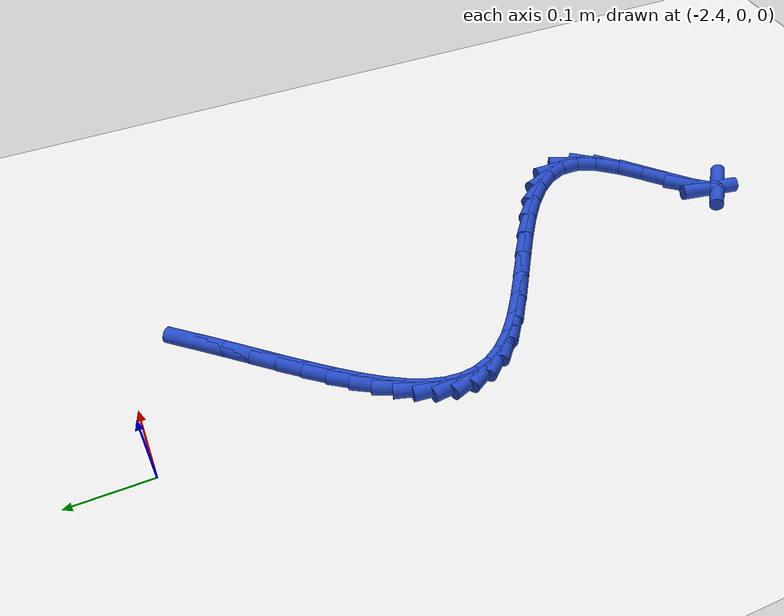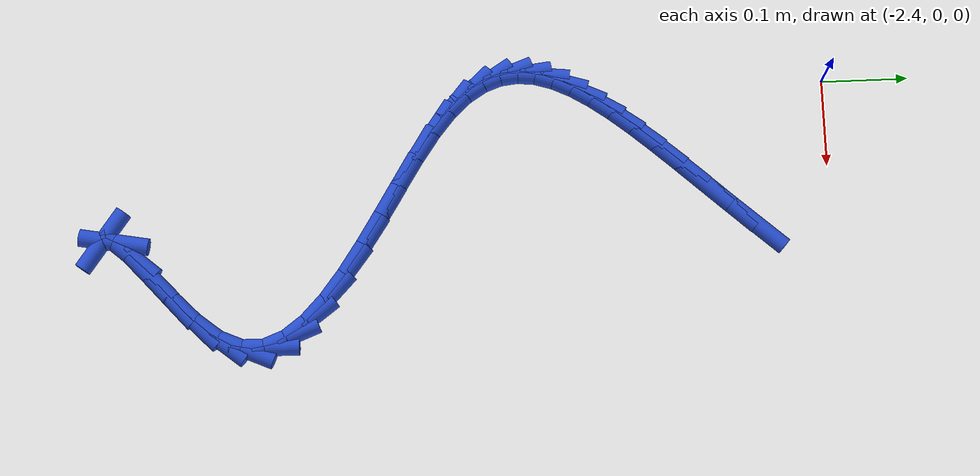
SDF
<sdf version="1.6">
 <world name="default">
  <model name="ground_plane">
   <static>1</static>
   <link name="link">
    <collision name="collision">
     <geometry><plane><normal>0 0 1</normal><size>100 100</size></plane></geometry>
     <surface><friction><ode><mu>100</mu><mu2>50</mu2></ode></friction></surface>
    </collision>
    <visual name="visual">
     <cast_shadows>0</cast_shadows>
     <geometry><plane><normal>0 0 1</normal><size>100 100</size></plane></geometry>
     <material>
      <script><uri>file://media/materials/scripts/gazebo.material</uri><name>Gazebo/WhiteGlow</name></script>
     </material>
    </visual>
   </link>
  </model>
  <model name="line">
   <link name="link_133">
    <pose>-2.2313706894288554 -0.08629669471742565 0.01 0 1.57 0.8448653574551647</pose>
    <collision name="collision">
     <geometry><cylinder><radius>0.01</radius><length>0.08</length></cylinder></geometry>
    </collision>
    <visual name="visual">
     <material>
      <script><name>Gazebo/Blue</name><uri>file://media/materials/scripts/gazebo.material</uri></script>
     </material>
     <geometry><cylinder><radius>0.01</radius><length>0.08</length></cylinder></geometry>
    </visual>
   </link>
   <link name="link_134">
    <pose>-2.257552228513083 -0.11579315679593868 0.01 0 1.57 0.8343181897351191</pose>
    <collision name="collision">
     <geometry><cylinder><radius>0.01</radius><length>0.08</length></cylinder></geometry>
    </collision>
    <visual name="visual">
     <material>
      <script><name>Gazebo/Blue</name><uri>file://media/materials/scripts/gazebo.material</uri></script>
     </material>
     <geometry><cylinder><radius>0.01</radius><length>0.08</length></cylinder></geometry>
    </visual>
   </link>
   <link name="link_135">
    <pose>-2.2830670945118268 -0.14393500668918308 0.01 0 1.57 0.8326649272173974</pose>
    <collision name="collision">
     <geometry><cylinder><radius>0.01</radius><length>0.08</length></cylinder></geometry>
    </collision>
    <visual name="visual">
     <material>
      <script><name>Gazebo/Blue</name><uri>file://media/materials/scripts/gazebo.material</uri></script>
     </material>
     <geometry><cylinder><radius>0.01</radius><length>0.08</length></cylinder></geometry>
    </visual>
   </link>
   <link name="link_136">
    <pose>-2.3075285313882845 -0.17082549196139513 0.01 0 1.57 0.8411425349911995</pose>
    <collision name="collision">
     <geometry><cylinder><radius>0.01</radius><length>0.08</length></cylinder></geometry>
    </collision>
    <visual name="visual">
     <material>
      <script><name>Gazebo/Blue</name><uri>file://media/materials/scripts/gazebo.material</uri></script>
     </material>
     <geometry><cylinder><radius>0.01</radius><length>0.08</length></cylinder></geometry>
    </visual>
   </link>
   <link name="link_137">
    <pose>-2.3305497831056536 -0.19656786017680972 0.01 0 1.57 0.8615862111270647</pose>
    <collision name="collision">
     <geometry><cylinder><radius>0.01</radius><length>0.08</length></cylinder></geometry>
    </collision>
    <visual name="visual">
     <material>
      <script><name>Gazebo/Blue</name><uri>file://media/materials/scripts/gazebo.material</uri></script>
     </material>
     <geometry><cylinder><radius>0.01</radius><length>0.08</length></cylinder></geometry>
    </visual>
   </link>
   <link name="link_138">
    <pose>-2.351744093627134 -0.22126535889966456 0.01 0 1.57 0.8966739751331181</pose>
    <collision name="collision">
     <geometry><cylinder><radius>0.01</radius><length>0.08</length></cylinder></geometry>
    </collision>
    <visual name="visual">
     <material>
      <script><name>Gazebo/Blue</name><uri>file://media/materials/scripts/gazebo.material</uri></script>
     </material>
     <geometry><cylinder><radius>0.01</radius><length>0.08</length></cylinder></geometry>
    </visual>
   </link>
   <link name="link_139">
    <pose>-2.370724706915924 -0.24502123569419446 0.01 0 1.57 0.9502430814318952</pose>
    <collision name="collision">
     <geometry><cylinder><radius>0.01</radius><length>0.08</length></cylinder></geometry>
    </collision>
    <visual name="visual">
     <material>
      <script><name>Gazebo/Blue</name><uri>file://media/materials/scripts/gazebo.material</uri></script>
     </material>
     <geometry><cylinder><radius>0.01</radius><length>0.08</length></cylinder></geometry>
    </visual>
   </link>
   <link name="link_140">
    <pose>-2.3871048669352213 -0.2679387381246361 0.01 0 1.57 1.0276127548378726</pose>
    <collision name="collision">
     <geometry><cylinder><radius>0.01</radius><length>0.08</length></cylinder></geometry>
    </collision>
    <visual name="visual">
     <material>
      <script><name>Gazebo/Blue</name><uri>file://media/materials/scripts/gazebo.material</uri></script>
     </material>
     <geometry><cylinder><radius>0.01</radius><length>0.08</length></cylinder></geometry>
    </visual>
   </link>
   <link name="link_141">
    <pose>-2.400497817648226 -0.29012111375522653 0.01 0 1.57 1.1356147891970254</pose>
    <collision name="collision">
     <geometry><cylinder><radius>0.01</radius><length>0.08</length></cylinder></geometry>
    </collision>
    <visual name="visual">
     <material>
      <script><name>Gazebo/Blue</name><uri>file://media/materials/scripts/gazebo.material</uri></script>
     </material>
     <geometry><cylinder><radius>0.01</radius><length>0.08</length></cylinder></geometry>
    </visual>
   </link>
   <link name="link_142">
    <pose>-2.410516803018136 -0.3116716101502004 0.01 0 1.57 1.2814485602273875</pose>
    <collision name="collision">
     <geometry><cylinder><radius>0.01</radius><length>0.08</length></cylinder></geometry>
    </collision>
    <visual name="visual">
     <material>
      <script><name>Gazebo/Blue</name><uri>file://media/materials/scripts/gazebo.material</uri></script>
     </material>
     <geometry><cylinder><radius>0.01</radius><length>0.08</length></cylinder></geometry>
    </visual>
   </link>
   <link name="link_143">
    <pose>-2.416775067008151 -0.3326934748737954 0.01 0 1.57 1.4686699901498668</pose>
    <collision name="collision">
     <geometry><cylinder><radius>0.01</radius><length>0.08</length></cylinder></geometry>
    </collision>
    <visual name="visual">
     <material>
      <script><name>Gazebo/Blue</name><uri>file://media/materials/scripts/gazebo.material</uri></script>
     </material>
     <geometry><cylinder><radius>0.01</radius><length>0.08</length></cylinder></geometry>
    </visual>
   </link>
   <link name="link_144">
    <pose>-2.4188858535814663 -0.3532899554902461 0.01 0 1.57 -1.4518281027129103</pose>
    <collision name="collision">
     <geometry><cylinder><radius>0.01</radius><length>0.08</length></cylinder></geometry>
    </collision>
    <visual name="visual">
     <material>
      <script><name>Gazebo/Blue</name><uri>file://media/materials/scripts/gazebo.material</uri></script>
     </material>
     <geometry><cylinder><radius>0.01</radius><length>0.08</length></cylinder></geometry>
    </visual>
   </link>
   <link name="link_145">
    <pose>-2.4164624067012848 -0.37356429956379017 0.01 0 1.57 -1.2197572971969575</pose>
    <collision name="collision">
     <geometry><cylinder><radius>0.01</radius><length>0.08</length></cylinder></geometry>
    </collision>
    <visual name="visual">
     <material>
      <script><name>Gazebo/Blue</name><uri>file://media/materials/scripts/gazebo.material</uri></script>
     </material>
     <geometry><cylinder><radius>0.01</radius><length>0.08</length></cylinder></geometry>
    </visual>
   </link>
   <link name="link_146">
    <pose>-2.409117970330802 -0.3936197546586625 0.01 0 1.57 -1.0053814659437237</pose>
    <collision name="collision">
     <geometry><cylinder><radius>0.01</radius><length>0.08</length></cylinder></geometry>
    </collision>
    <visual name="visual">
     <material>
      <script><name>Gazebo/Blue</name><uri>file://media/materials/scripts/gazebo.material</uri></script>
     </material>
     <geometry><cylinder><radius>0.01</radius><length>0.08</length></cylinder></geometry>
    </visual>
   </link>
   <link name="link_147">
    <pose>-2.3964657884332174 -0.41355956833910035 0.01 0 1.57 -0.8266751205242541</pose>
    <collision name="collision">
     <geometry><cylinder><radius>0.01</radius><length>0.08</length></cylinder></geometry>
    </collision>
    <visual name="visual">
     <material>
      <script><name>Gazebo/Blue</name><uri>file://media/materials/scripts/gazebo.material</uri></script>
     </material>
     <geometry><cylinder><radius>0.01</radius><length>0.08</length></cylinder></geometry>
    </visual>
   </link>
   <link name="link_148">
    <pose>-2.378119104971731 -0.43348698816933895 0.01 0 1.57 -0.6898411182218643</pose>
    <collision name="collision">
     <geometry><cylinder><radius>0.01</radius><length>0.08</length></cylinder></geometry>
    </collision>
    <visual name="visual">
     <material>
      <script><name>Gazebo/Blue</name><uri>file://media/materials/scripts/gazebo.material</uri></script>
     </material>
     <geometry><cylinder><radius>0.01</radius><length>0.08</length></cylinder></geometry>
    </visual>
   </link>
   <link name="link_149">
    <pose>-2.3538586944978954 -0.4535035015420613 0.01 0 1.57 -0.6061900566730385</pose>
    <collision name="collision">
     <geometry><cylinder><radius>0.01</radius><length>0.08</length></cylinder></geometry>
    </collision>
    <visual name="visual">
     <material>
      <script><name>Gazebo/Blue</name><uri>file://media/materials/scripts/gazebo.material</uri></script>
     </material>
     <geometry><cylinder><radius>0.01</radius><length>0.08</length></cylinder></geometry>
    </visual>
   </link>
   <link name="link_150">
    <pose>-2.3247300506309867 -0.47369730799279586 0.01 0 1.57 -0.5634601092797911</pose>
    <collision name="collision">
     <geometry><cylinder><radius>0.01</radius><length>0.08</length></cylinder></geometry>
    </collision>
    <visual name="visual">
     <material>
      <script><name>Gazebo/Blue</name><uri>file://media/materials/scripts/gazebo.material</uri></script>
     </material>
     <geometry><cylinder><radius>0.01</radius><length>0.08</length></cylinder></geometry>
    </visual>
   </link>
   <link name="link_151">
    <pose>-2.292356081583454 -0.49415054041126283 0.01 0 1.57 -0.548999037191448</pose>
    <collision name="collision">
     <geometry><cylinder><radius>0.01</radius><length>0.08</length></cylinder></geometry>
    </collision>
    <visual name="visual">
     <material>
      <script><name>Gazebo/Blue</name><uri>file://media/materials/scripts/gazebo.material</uri></script>
     </material>
     <geometry><cylinder><radius>0.01</radius><length>0.08</length></cylinder></geometry>
    </visual>
   </link>
   <link name="link_152">
    <pose>-2.258362653422423 -0.5149453006102812 0.01 0 1.57 -0.5581019778000411</pose>
    <collision name="collision">
     <geometry><cylinder><radius>0.01</radius><length>0.08</length></cylinder></geometry>
    </collision>
    <visual name="visual">
     <material>
      <script><name>Gazebo/Blue</name><uri>file://media/materials/scripts/gazebo.material</uri></script>
     </material>
     <geometry><cylinder><radius>0.01</radius><length>0.08</length></cylinder></geometry>
    </visual>
   </link>
   <link name="link_153">
    <pose>-2.2243756322150245 -0.5361636904026683 0.01 0 1.57 -0.5912967274950527</pose>
    <collision name="collision">
     <geometry><cylinder><radius>0.01</radius><length>0.08</length></cylinder></geometry>
    </collision>
    <visual name="visual">
     <material>
      <script><name>Gazebo/Blue</name><uri>file://media/materials/scripts/gazebo.material</uri></script>
     </material>
     <geometry><cylinder><radius>0.01</radius><length>0.08</length></cylinder></geometry>
    </visual>
   </link>
   <link name="link_154">
    <pose>-2.1920208840283815 -0.5578878116012427 0.01 0 1.57 -0.6541812929842659</pose>
    <collision name="collision">
     <geometry><cylinder><radius>0.01</radius><length>0.08</length></cylinder></geometry>
    </collision>
    <visual name="visual">
     <material>
      <script><name>Gazebo/Blue</name><uri>file://media/materials/scripts/gazebo.material</uri></script>
     </material>
     <geometry><cylinder><radius>0.01</radius><length>0.08</length></cylinder></geometry>
    </visual>
   </link>
   <link name="link_155">
    <pose>-2.162924274929625 -0.5801997660188216 0.01 0 1.57 -0.7593265702329363</pose>
    <collision name="collision">
     <geometry><cylinder><radius>0.01</radius><length>0.08</length></cylinder></geometry>
    </collision>
    <visual name="visual">
     <material>
      <script><name>Gazebo/Blue</name><uri>file://media/materials/scripts/gazebo.material</uri></script>
     </material>
     <geometry><cylinder><radius>0.01</radius><length>0.08</length></cylinder></geometry>
    </visual>
   </link>
   <link name="link_156">
    <pose>-2.138711670985879 -0.6031816554682242 0.01 0 1.57 -0.9299352935387623</pose>
    <collision name="collision">
     <geometry><cylinder><radius>0.01</radius><length>0.08</length></cylinder></geometry>
    </collision>
    <visual name="visual">
     <material>
      <script><name>Gazebo/Blue</name><uri>file://media/materials/scripts/gazebo.material</uri></script>
     </material>
     <geometry><cylinder><radius>0.01</radius><length>0.08</length></cylinder></geometry>
    </visual>
   </link>
   <link name="link_157">
    <pose>-2.1210089382642727 -0.6269155817622678 0.01 0 1.57 -1.1994543982569883</pose>
    <collision name="collision">
     <geometry><cylinder><radius>0.01</radius><length>0.08</length></cylinder></geometry>
    </collision>
    <visual name="visual">
     <material>
      <script><name>Gazebo/Blue</name><uri>file://media/materials/scripts/gazebo.material</uri></script>
     </material>
     <geometry><cylinder><radius>0.01</radius><length>0.08</length></cylinder></geometry>
    </visual>
   </link>
   <link name="link_158">
    <pose>-2.1114419428319326 -0.6514836467137713 0.01 0 1.57 1.5631600919376631</pose>
    <collision name="collision">
     <geometry><cylinder><radius>0.01</radius><length>0.08</length></cylinder></geometry>
    </collision>
    <visual name="visual">
     <material>
      <script><name>Gazebo/Blue</name><uri>file://media/materials/scripts/gazebo.material</uri></script>
     </material>
     <geometry><cylinder><radius>0.01</radius><length>0.08</length></cylinder></geometry>
    </visual>
   </link>
   <link name="link_159">
    <pose>-2.111636550755986 -0.6769679521355516 0.01 0 1.57 1.1610725256675594</pose>
    <collision name="collision">
     <geometry><cylinder><radius>0.01</radius><length>0.08</length></cylinder></geometry>
    </collision>
    <visual name="visual">
     <material>
      <script><name>Gazebo/Blue</name><uri>file://media/materials/scripts/gazebo.material</uri></script>
     </material>
     <geometry><cylinder><radius>0.01</radius><length>0.08</length></cylinder></geometry>
    </visual>
   </link>
   <link name="link_160">
    <pose>-2.12313063637537 -0.7034335511766611 0.01 0 1.57 0.8967873928771107</pose>
    <collision name="collision">
     <geometry><cylinder><radius>0.01</radius><length>0.08</length></cylinder></geometry>
    </collision>
    <visual name="visual">
     <material>
      <script><name>Gazebo/Blue</name><uri>file://media/materials/scripts/gazebo.material</uri></script>
     </material>
     <geometry><cylinder><radius>0.01</radius><length>0.08</length></cylinder></geometry>
    </visual>
   </link>
   <link name="link_161">
    <pose>-2.144675980914126 -0.730405683009141 0.01 0 1.57 0.7724435214201977</pose>
    <collision name="collision">
     <geometry><cylinder><radius>0.01</radius><length>0.08</length></cylinder></geometry>
    </collision>
    <visual name="visual">
     <material>
      <script><name>Gazebo/Blue</name><uri>file://media/materials/scripts/gazebo.material</uri></script>
     </material>
     <geometry><cylinder><radius>0.01</radius><length>0.08</length></cylinder></geometry>
    </visual>
   </link>
   <link name="link_162">
    <pose>-2.1717346312313666 -0.756772190810853 0.01 0 1.57 0.7238549523776817</pose>
    <collision name="collision">
     <geometry><cylinder><radius>0.01</radius><length>0.08</length></cylinder></geometry>
    </collision>
    <visual name="visual">
     <material>
      <script><name>Gazebo/Blue</name><uri>file://media/materials/scripts/gazebo.material</uri></script>
     </material>
     <geometry><cylinder><radius>0.01</radius><length>0.08</length></cylinder></geometry>
    </visual>
   </link>
   <link name="link_163">
    <pose>-2.199579041549125 -0.7813841836121604 0.01 0 1.57 0.7373321786114734</pose>
    <collision name="collision">
     <geometry><cylinder><radius>0.01</radius><length>0.08</length></cylinder></geometry>
    </collision>
    <visual name="visual">
     <material>
      <script><name>Gazebo/Blue</name><uri>file://media/materials/scripts/gazebo.material</uri></script>
     </material>
     <geometry><cylinder><radius>0.01</radius><length>0.08</length></cylinder></geometry>
    </visual>
   </link>
   <link name="link_164">
    <pose>-2.2234816660894303 -0.8030927704434232 0.01 0 1.57 0.8589359653022979</pose>
    <collision name="collision">
     <geometry><cylinder><radius>0.01</radius><length>0.08</length></cylinder></geometry>
    </collision>
    <visual name="visual">
     <material>
      <script><name>Gazebo/Blue</name><uri>file://media/materials/scripts/gazebo.material</uri></script>
     </material>
     <geometry><cylinder><radius>0.01</radius><length>0.08</length></cylinder></geometry>
    </visual>
   </link>
   <link name="link_165">
    <pose>-2.2387149590743167 -0.8207490603350047 0.01 0 1.57 1.3930300692586628</pose>
    <collision name="collision">
     <geometry><cylinder><radius>0.01</radius><length>0.08</length></cylinder></geometry>
    </collision>
    <visual name="visual">
     <material>
      <script><name>Gazebo/Blue</name><uri>file://media/materials/scripts/gazebo.material</uri></script>
     </material>
     <geometry><cylinder><radius>0.01</radius><length>0.08</length></cylinder></geometry>
    </visual>
   </link>
   <link name="link_166">
    <pose>-2.2409780713082705 -0.8333455065940983 0.01 0 1.57 -0.6293424319224381</pose>
    <collision name="collision">
     <geometry><cylinder><radius>0.01</radius><length>0.08</length></cylinder></geometry>
    </collision>
    <visual name="visual">
     <material>
      <script><name>Gazebo/Blue</name><uri>file://media/materials/scripts/gazebo.material</uri></script>
     </material>
     <geometry><cylinder><radius>0.01</radius><length>0.08</length></cylinder></geometry>
    </visual>
   </link>
  </model>
 </world>
</sdf>
